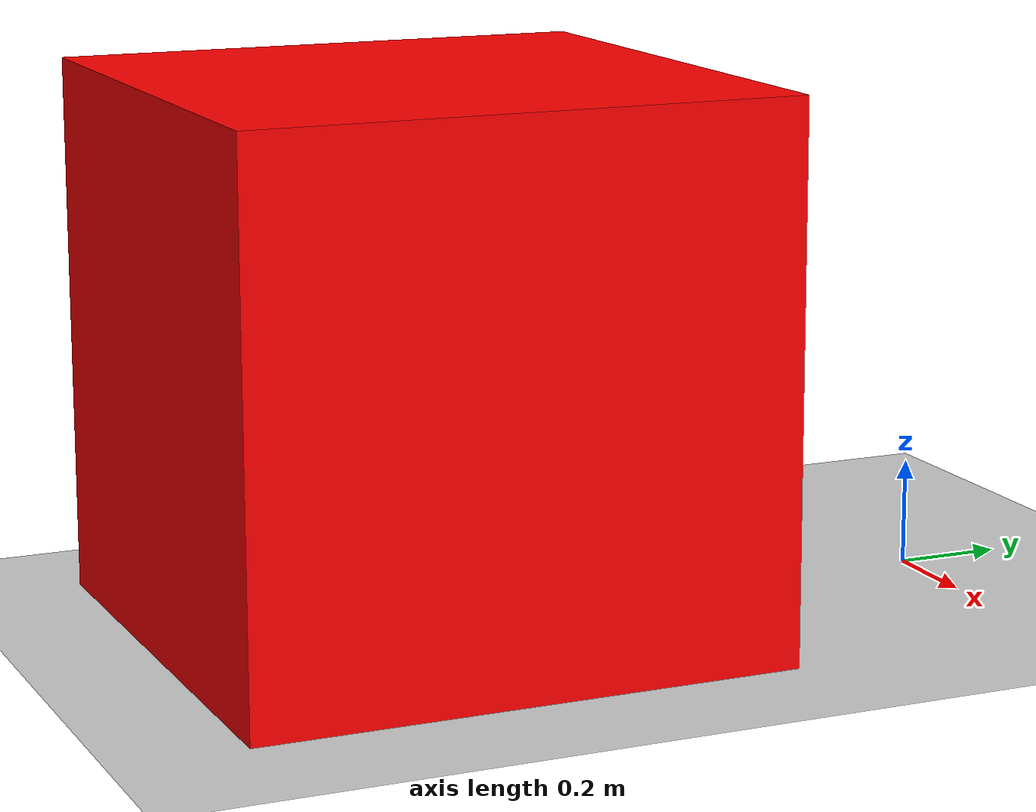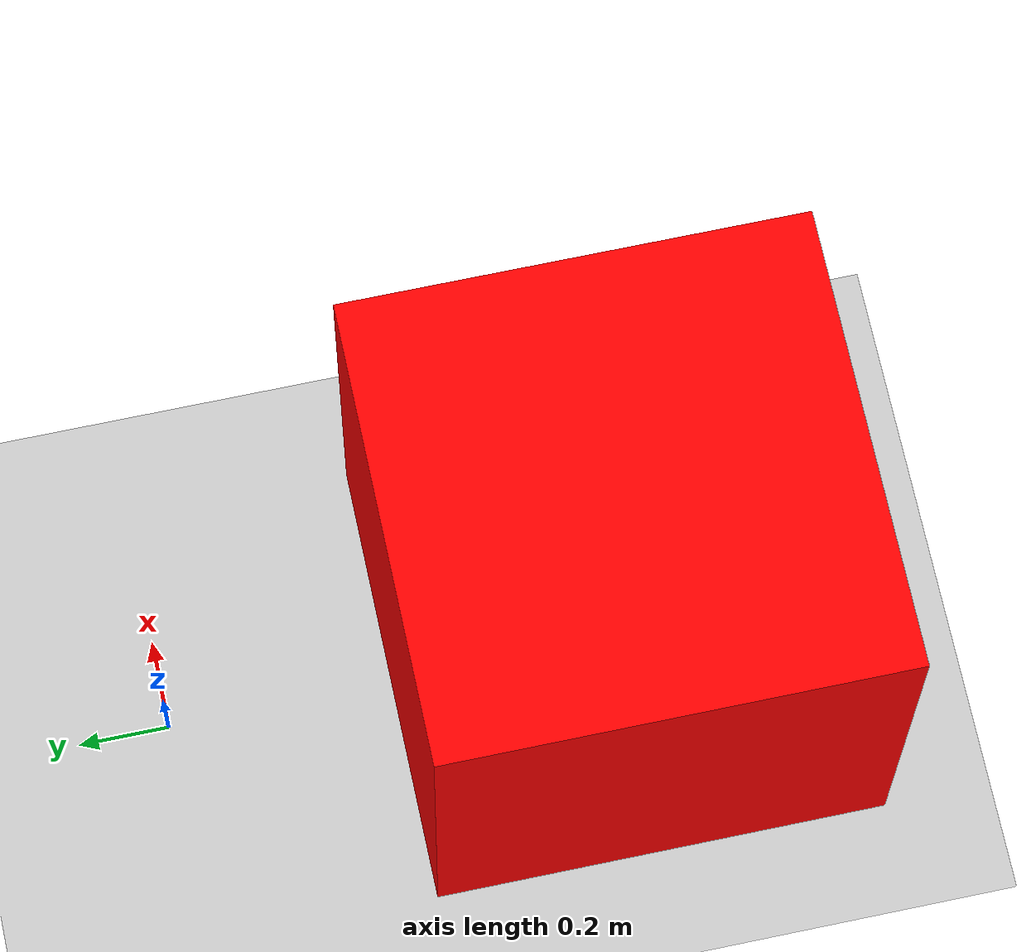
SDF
<?xml version="1.0" ?>
<sdf version="1.6">
  <world name="default">
    <physics type='ode'>
      <max_step_size>0.004</max_step_size>
      <real_time_factor>1.0</real_time_factor>
      <real_time_update_rate>250</real_time_update_rate>
    </physics>
    <gravity>0 0 -9.8066</gravity>
    <magnetic_field>6.0e-6 2.3e-5 -4.2e-5</magnetic_field>
    <atmosphere type='adiabatic'/>

    <spherical_coordinates>
      <surface_model>EARTH_WGS84</surface_model>
      <world_frame_orientation>ENU</world_frame_orientation>
      <latitude_deg>47.397742</latitude_deg>
      <longitude_deg>8.545594</longitude_deg>
      <elevation>488.0</elevation>
      <heading_deg>0</heading_deg>
    </spherical_coordinates>

    <plugin
      filename="gz-sim-physics-system"
      name="gz::sim::systems::Physics">
    </plugin>
    <plugin
      filename="gz-sim-user-commands-system"
      name="gz::sim::systems::UserCommands">
    </plugin>
    <plugin
      filename="gz-sim-scene-broadcaster-system"
      name="gz::sim::systems::SceneBroadcaster">
    </plugin>

    <!-- sensor plugins -->
    <plugin filename="gz-sim-imu-system"
        name="gz::sim::systems::Imu">
    </plugin>
    <plugin
        filename="gz-sim-sensors-system"
        name="gz::sim::systems::Sensors">
        <render_engine>ogre2</render_engine>
      </plugin>

    <gui fullscreen="0">
      <!-- 3D scene -->
      <plugin filename="MinimalScene" name="3D View">
        <gz-gui>
          <title>3D View</title>
          <property type="bool" key="showTitleBar">false</property>
          <property type="string" key="state">docked</property>
        </gz-gui>

        <engine>ogre2</engine>
        <scene>scene</scene>
        <ambient_light>0.4 0.4 0.4</ambient_light>
        <background_color>0.8 0.8 0.8</background_color>
        <camera_pose>-6 0 6 0 0.5 0</camera_pose>
      </plugin>

      <!-- Plugins that add functionality to the scene -->
      <plugin filename="EntityContextMenuPlugin" name="Entity context menu">
        <gz-gui>
          <property key="state" type="string">floating</property>
          <property key="width" type="double">5</property>
          <property key="height" type="double">5</property>
          <property key="showTitleBar" type="bool">false</property>
        </gz-gui>
      </plugin>
      <plugin filename="GzSceneManager" name="Scene Manager">
        <gz-gui>
          <property key="resizable" type="bool">false</property>
          <property key="width" type="double">5</property>
          <property key="height" type="double">5</property>
          <property key="state" type="string">floating</property>
          <property key="showTitleBar" type="bool">false</property>
        </gz-gui>
      </plugin>
      <plugin filename="InteractiveViewControl" name="Interactive view control">
        <gz-gui>
          <property key="resizable" type="bool">false</property>
          <property key="width" type="double">5</property>
          <property key="height" type="double">5</property>
          <property key="state" type="string">floating</property>
          <property key="showTitleBar" type="bool">false</property>
        </gz-gui>
      </plugin>
      <plugin filename="CameraTracking" name="Camera Tracking">
        <gz-gui>
          <property key="resizable" type="bool">false</property>
          <property key="width" type="double">5</property>
          <property key="height" type="double">5</property>
          <property key="state" type="string">floating</property>
          <property key="showTitleBar" type="bool">false</property>
        </gz-gui>
      </plugin>

      <!-- World control -->
      <plugin filename="WorldControl" name="World control">
        <gz-gui>
          <title>World control</title>
          <property type="bool" key="showTitleBar">false</property>
          <property type="bool" key="resizable">false</property>
          <property type="double" key="height">72</property>
          <property type="double" key="width">121</property>
          <property type="double" key="z">1</property>

          <property type="string" key="state">floating</property>
          <anchors target="3D View">
            <line own="left" target="left"/>
            <line own="bottom" target="bottom"/>
          </anchors>
        </gz-gui>

        <play_pause>true</play_pause>
        <step>true</step>
        <start_paused>true</start_paused>
        <use_event>true</use_event>

      </plugin>

      <!-- World statistics -->
      <plugin filename="WorldStats" name="World stats">
        <gz-gui>
          <title>World stats</title>
          <property type="bool" key="showTitleBar">false</property>
          <property type="bool" key="resizable">false</property>
          <property type="double" key="height">110</property>
          <property type="double" key="width">290</property>
          <property type="double" key="z">1</property>

          <property type="string" key="state">floating</property>
          <anchors target="3D View">
            <line own="right" target="right"/>
            <line own="bottom" target="bottom"/>
          </anchors>
        </gz-gui>

        <sim_time>true</sim_time>
        <real_time>true</real_time>
        <real_time_factor>true</real_time_factor>
        <iterations>true</iterations>
      </plugin>

      <!-- Inspector -->
      <plugin filename="ComponentInspector" name="Component inspector">
        <gz-gui>
          <property type="string" key="state">docked</property>
        </gz-gui>
      </plugin>

      <!-- Entity tree -->
      <plugin filename="EntityTree" name="Entity tree">
        <gz-gui>
          <property type="string" key="state">docked</property>
        </gz-gui>
      </plugin>
    </gui>

    <light type="directional" name="sun">
      <cast_shadows>true</cast_shadows>
      <pose>0 0 10 0 0 0</pose>
      <diffuse>1 1 1 1</diffuse>
      <specular>0.5 0.5 0.5 1</specular>
      <attenuation>
        <range>1000</range>
        <constant>0.9</constant>
        <linear>0.01</linear>
        <quadratic>0.001</quadratic>
      </attenuation>
      <direction>-0.5 0.1 -0.9</direction>
    </light>

    <model name="ground_plane">
      <static>true</static>
      <link name="link">
        <collision name="collision">
          <geometry>
            <plane>
              <normal>0 0 1</normal>
              <size>100 100</size>
            </plane>
          </geometry>
        </collision>
        <visual name="visual">
          <geometry>
            <plane>
              <normal>0 0 1</normal>
              <size>100 100</size>
            </plane>
          </geometry>
          <material>
            <ambient>0.8 0.8 0.8 1</ambient>
            <diffuse>0.8 0.8 0.8 1</diffuse>
            <specular>0.8 0.8 0.8 1</specular>
          </material>
        </visual>
      </link>
    </model>
    <model name="box">
      <pose>0 -1 0.5 0 0 0</pose>
      <link name="box_link">
        <inertial>
          <inertia>
            <ixx>1</ixx>
            <ixy>0</ixy>
            <ixz>0</ixz>
            <iyy>1</iyy>
            <iyz>0</iyz>
            <izz>1</izz>
          </inertia>
          <mass>1.0</mass>
        </inertial>
        <collision name="box_collision">
          <geometry>
            <box>
              <size>1 1 1</size>
            </box>
          </geometry>
        </collision>

        <visual name="box_visual">
          <geometry>
            <box>
              <size>1 1 1</size>
            </box>
          </geometry>
          <material>
            <ambient>1 0 0 1</ambient>
            <diffuse>1 0 0 1</diffuse>
            <specular>1 0 0 1</specular>
          </material>
        </visual>
      </link>
    </model>
  </world>
</sdf>
